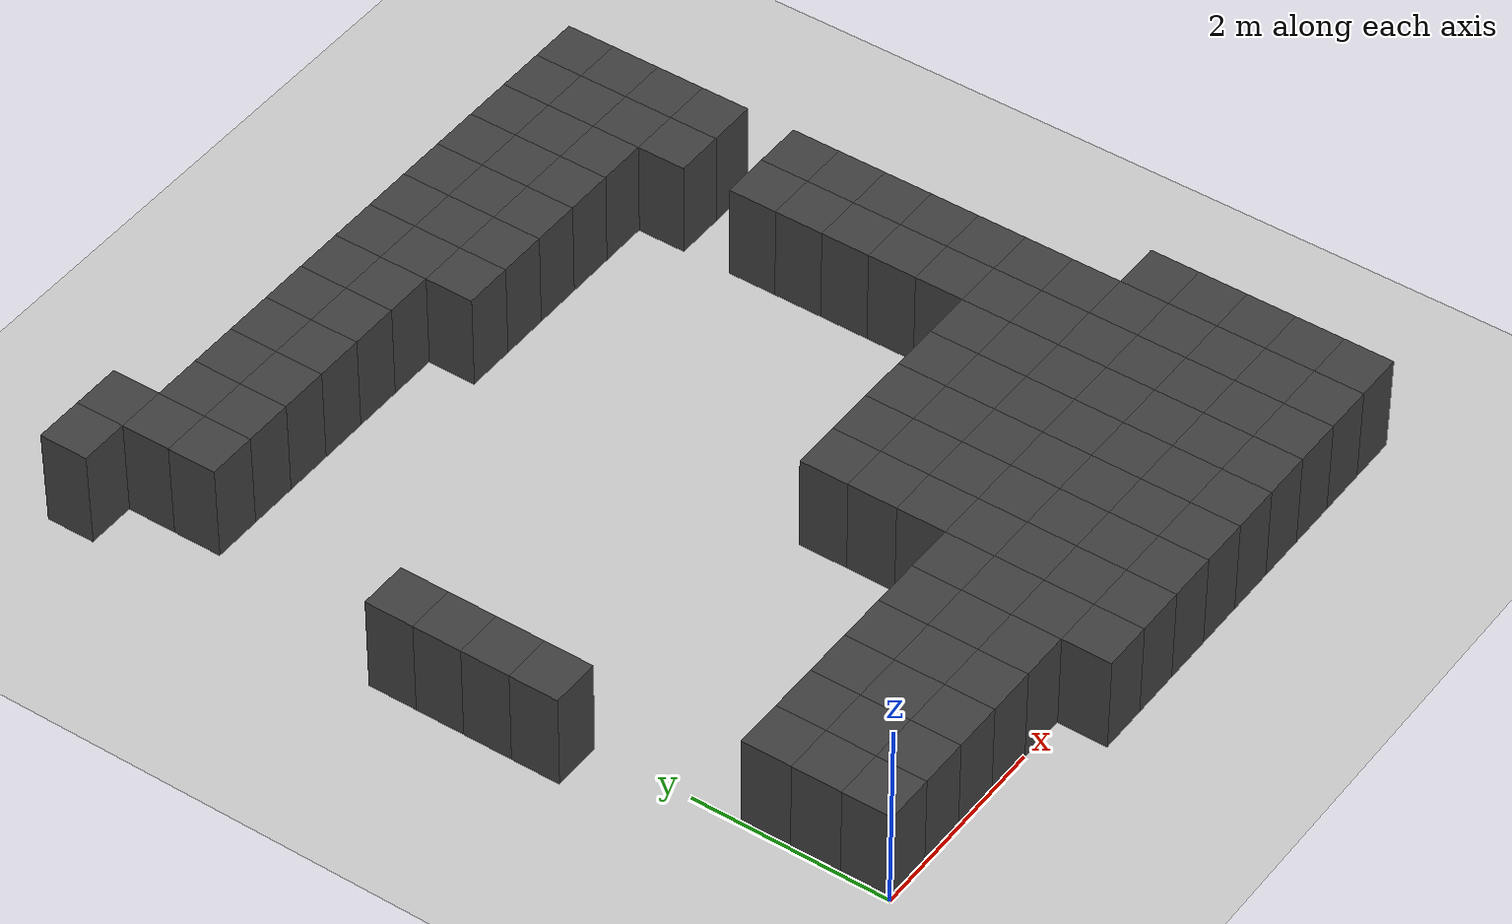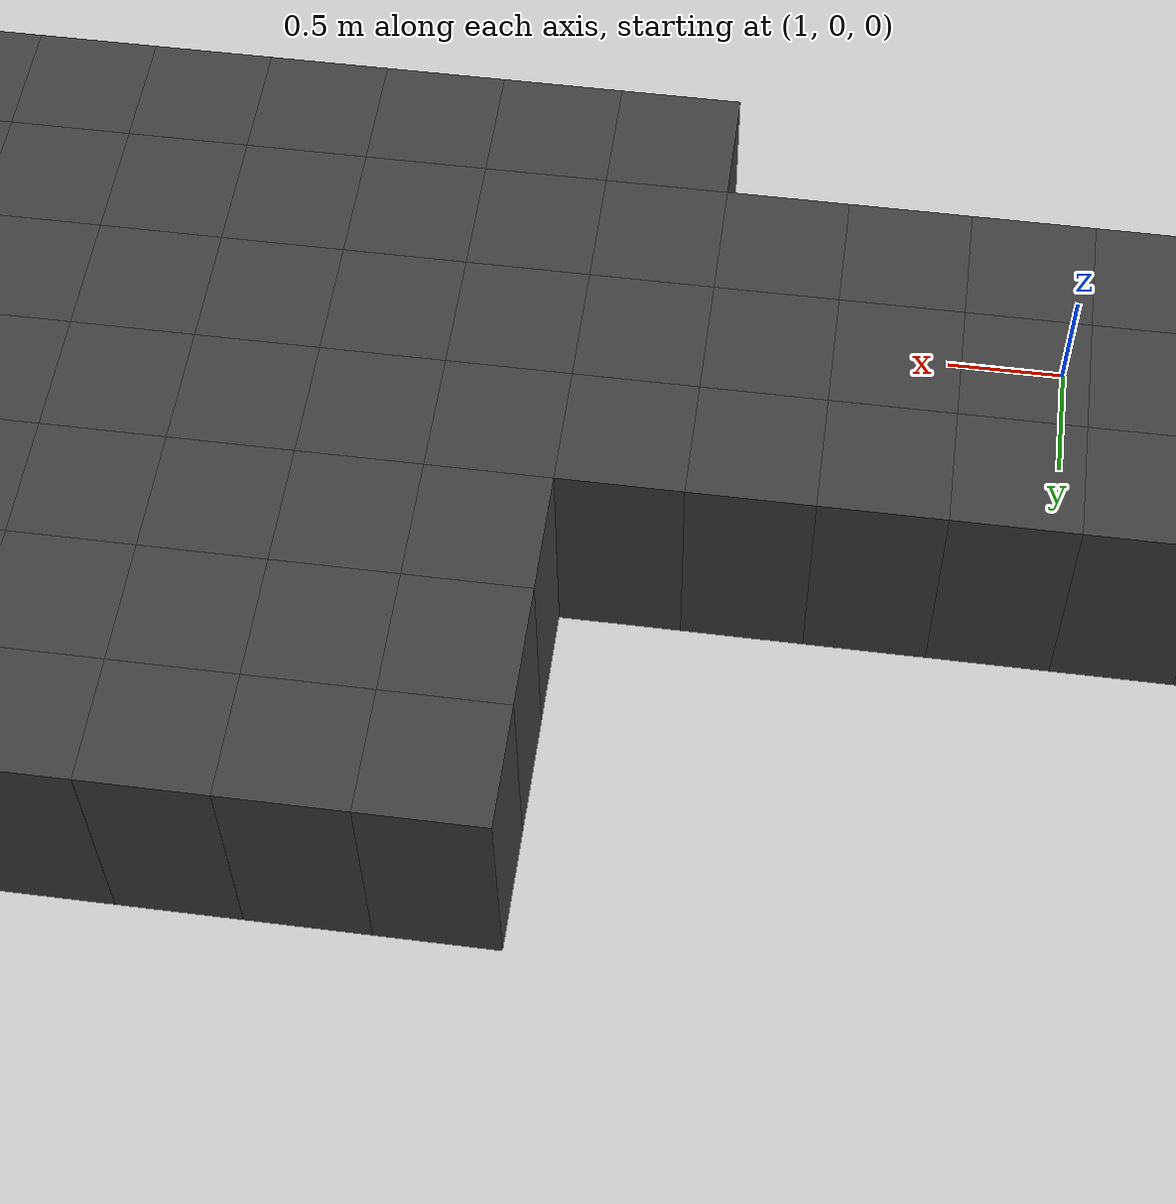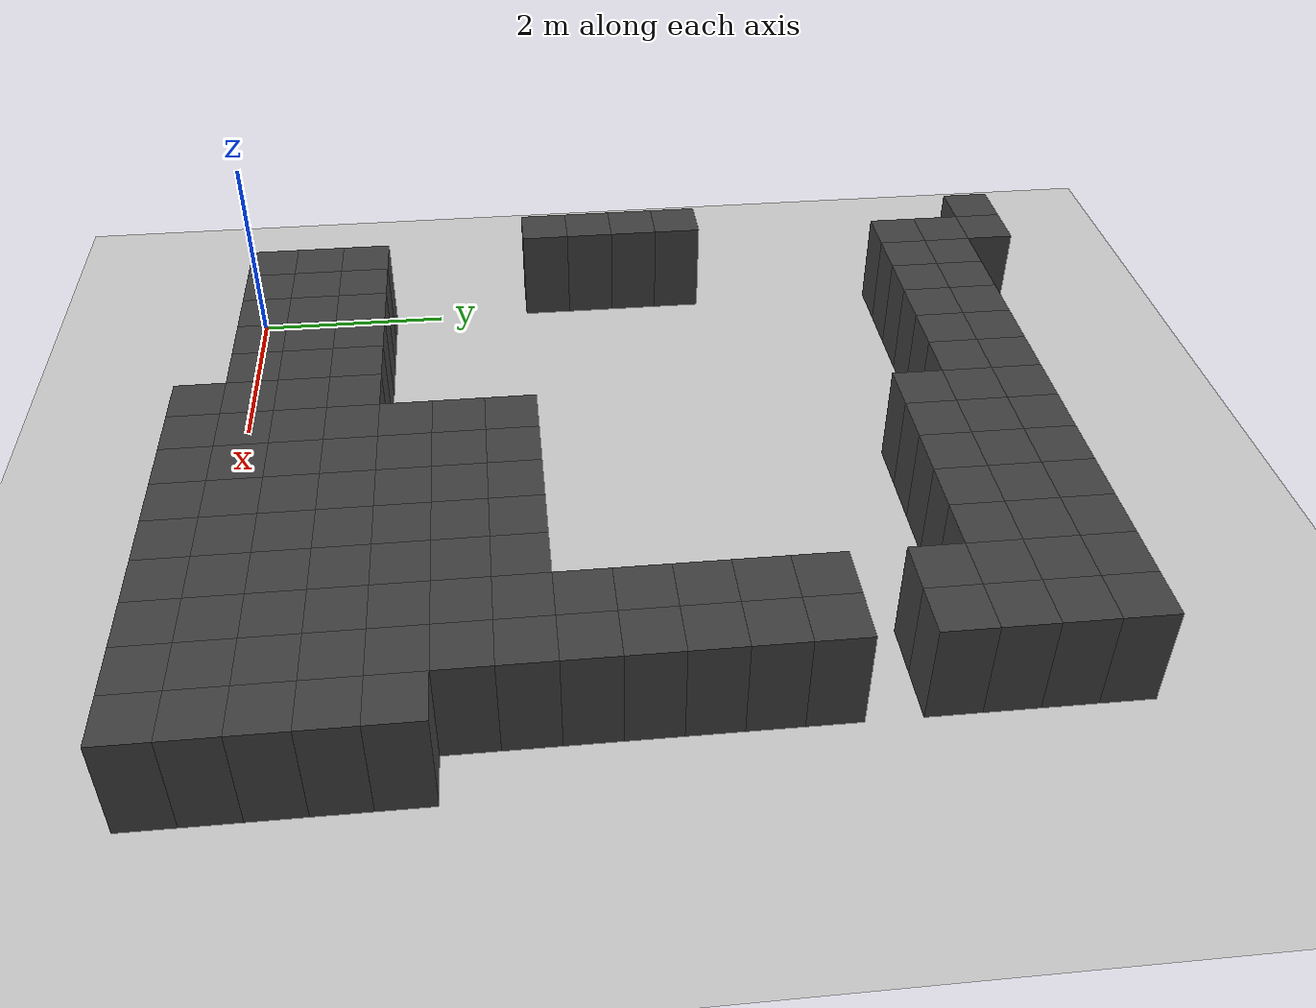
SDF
<sdf version="1.7">
 <world name="map_14074">
  <model name="ground_plane">
   <static>true</static>
   <link name="link">
    <collision name="collision">
     <geometry><plane><normal>0 0 1</normal><size>200 200</size></plane></geometry>
    </collision>
    <visual name="visual">
     <geometry><plane><normal>0 0 1</normal><size>200 200</size></plane></geometry>
     <material><ambient>0.8 0.8 0.8 1</ambient><diffuse>0.8 0.8 0.8 1</diffuse></material>
    </visual>
   </link>
  </model>
  <model name="maze_environment">
   <static>true</static>
   <link name="wall_410">
    <pose>-0.250 8.250 0.500 0 0 0</pose>
    <collision name="col"><geometry><box><size>0.5 0.5 1.0</size></box></geometry></collision>
    <visual name="vis">
     <geometry><box><size>0.5 0.5 1.0</size></box></geometry>
     <material><ambient>0.15 0.15 0.15 1</ambient><diffuse>0.25 0.25 0.25 1</diffuse></material>
    </visual>
   </link>
   <link name="wall_411">
    <pose>0.250 8.250 0.500 0 0 0</pose>
    <collision name="col"><geometry><box><size>0.5 0.5 1.0</size></box></geometry></collision>
    <visual name="vis">
     <geometry><box><size>0.5 0.5 1.0</size></box></geometry>
     <material><ambient>0.15 0.15 0.15 1</ambient><diffuse>0.25 0.25 0.25 1</diffuse></material>
    </visual>
   </link>
   <link name="wall_456">
    <pose>0.250 7.750 0.500 0 0 0</pose>
    <collision name="col"><geometry><box><size>0.5 0.5 1.0</size></box></geometry></collision>
    <visual name="vis">
     <geometry><box><size>0.5 0.5 1.0</size></box></geometry>
     <material><ambient>0.15 0.15 0.15 1</ambient><diffuse>0.25 0.25 0.25 1</diffuse></material>
    </visual>
   </link>
   <link name="wall_457">
    <pose>0.750 7.750 0.500 0 0 0</pose>
    <collision name="col"><geometry><box><size>0.5 0.5 1.0</size></box></geometry></collision>
    <visual name="vis">
     <geometry><box><size>0.5 0.5 1.0</size></box></geometry>
     <material><ambient>0.15 0.15 0.15 1</ambient><diffuse>0.25 0.25 0.25 1</diffuse></material>
    </visual>
   </link>
   <link name="wall_458">
    <pose>1.250 7.750 0.500 0 0 0</pose>
    <collision name="col"><geometry><box><size>0.5 0.5 1.0</size></box></geometry></collision>
    <visual name="vis">
     <geometry><box><size>0.5 0.5 1.0</size></box></geometry>
     <material><ambient>0.15 0.15 0.15 1</ambient><diffuse>0.25 0.25 0.25 1</diffuse></material>
    </visual>
   </link>
   <link name="wall_459">
    <pose>1.750 7.750 0.500 0 0 0</pose>
    <collision name="col"><geometry><box><size>0.5 0.5 1.0</size></box></geometry></collision>
    <visual name="vis">
     <geometry><box><size>0.5 0.5 1.0</size></box></geometry>
     <material><ambient>0.15 0.15 0.15 1</ambient><diffuse>0.25 0.25 0.25 1</diffuse></material>
    </visual>
   </link>
   <link name="wall_460">
    <pose>2.250 7.750 0.500 0 0 0</pose>
    <collision name="col"><geometry><box><size>0.5 0.5 1.0</size></box></geometry></collision>
    <visual name="vis">
     <geometry><box><size>0.5 0.5 1.0</size></box></geometry>
     <material><ambient>0.15 0.15 0.15 1</ambient><diffuse>0.25 0.25 0.25 1</diffuse></material>
    </visual>
   </link>
   <link name="wall_461">
    <pose>2.750 7.750 0.500 0 0 0</pose>
    <collision name="col"><geometry><box><size>0.5 0.5 1.0</size></box></geometry></collision>
    <visual name="vis">
     <geometry><box><size>0.5 0.5 1.0</size></box></geometry>
     <material><ambient>0.15 0.15 0.15 1</ambient><diffuse>0.25 0.25 0.25 1</diffuse></material>
    </visual>
   </link>
   <link name="wall_462">
    <pose>3.250 7.750 0.500 0 0 0</pose>
    <collision name="col"><geometry><box><size>0.5 0.5 1.0</size></box></geometry></collision>
    <visual name="vis">
     <geometry><box><size>0.5 0.5 1.0</size></box></geometry>
     <material><ambient>0.15 0.15 0.15 1</ambient><diffuse>0.25 0.25 0.25 1</diffuse></material>
    </visual>
   </link>
   <link name="wall_463">
    <pose>3.750 7.750 0.500 0 0 0</pose>
    <collision name="col"><geometry><box><size>0.5 0.5 1.0</size></box></geometry></collision>
    <visual name="vis">
     <geometry><box><size>0.5 0.5 1.0</size></box></geometry>
     <material><ambient>0.15 0.15 0.15 1</ambient><diffuse>0.25 0.25 0.25 1</diffuse></material>
    </visual>
   </link>
   <link name="wall_464">
    <pose>4.250 7.750 0.500 0 0 0</pose>
    <collision name="col"><geometry><box><size>0.5 0.5 1.0</size></box></geometry></collision>
    <visual name="vis">
     <geometry><box><size>0.5 0.5 1.0</size></box></geometry>
     <material><ambient>0.15 0.15 0.15 1</ambient><diffuse>0.25 0.25 0.25 1</diffuse></material>
    </visual>
   </link>
   <link name="wall_465">
    <pose>4.750 7.750 0.500 0 0 0</pose>
    <collision name="col"><geometry><box><size>0.5 0.5 1.0</size></box></geometry></collision>
    <visual name="vis">
     <geometry><box><size>0.5 0.5 1.0</size></box></geometry>
     <material><ambient>0.15 0.15 0.15 1</ambient><diffuse>0.25 0.25 0.25 1</diffuse></material>
    </visual>
   </link>
   <link name="wall_466">
    <pose>5.250 7.750 0.500 0 0 0</pose>
    <collision name="col"><geometry><box><size>0.5 0.5 1.0</size></box></geometry></collision>
    <visual name="vis">
     <geometry><box><size>0.5 0.5 1.0</size></box></geometry>
     <material><ambient>0.15 0.15 0.15 1</ambient><diffuse>0.25 0.25 0.25 1</diffuse></material>
    </visual>
   </link>
   <link name="wall_467">
    <pose>5.750 7.750 0.500 0 0 0</pose>
    <collision name="col"><geometry><box><size>0.5 0.5 1.0</size></box></geometry></collision>
    <visual name="vis">
     <geometry><box><size>0.5 0.5 1.0</size></box></geometry>
     <material><ambient>0.15 0.15 0.15 1</ambient><diffuse>0.25 0.25 0.25 1</diffuse></material>
    </visual>
   </link>
   <link name="wall_468">
    <pose>6.250 7.750 0.500 0 0 0</pose>
    <collision name="col"><geometry><box><size>0.5 0.5 1.0</size></box></geometry></collision>
    <visual name="vis">
     <geometry><box><size>0.5 0.5 1.0</size></box></geometry>
     <material><ambient>0.15 0.15 0.15 1</ambient><diffuse>0.25 0.25 0.25 1</diffuse></material>
    </visual>
   </link>
   <link name="wall_501">
    <pose>0.250 7.250 0.500 0 0 0</pose>
    <collision name="col"><geometry><box><size>0.5 0.5 1.0</size></box></geometry></collision>
    <visual name="vis">
     <geometry><box><size>0.5 0.5 1.0</size></box></geometry>
     <material><ambient>0.15 0.15 0.15 1</ambient><diffuse>0.25 0.25 0.25 1</diffuse></material>
    </visual>
   </link>
   <link name="wall_502">
    <pose>0.750 7.250 0.500 0 0 0</pose>
    <collision name="col"><geometry><box><size>0.5 0.5 1.0</size></box></geometry></collision>
    <visual name="vis">
     <geometry><box><size>0.5 0.5 1.0</size></box></geometry>
     <material><ambient>0.15 0.15 0.15 1</ambient><diffuse>0.25 0.25 0.25 1</diffuse></material>
    </visual>
   </link>
   <link name="wall_503">
    <pose>1.250 7.250 0.500 0 0 0</pose>
    <collision name="col"><geometry><box><size>0.5 0.5 1.0</size></box></geometry></collision>
    <visual name="vis">
     <geometry><box><size>0.5 0.5 1.0</size></box></geometry>
     <material><ambient>0.15 0.15 0.15 1</ambient><diffuse>0.25 0.25 0.25 1</diffuse></material>
    </visual>
   </link>
   <link name="wall_504">
    <pose>1.750 7.250 0.500 0 0 0</pose>
    <collision name="col"><geometry><box><size>0.5 0.5 1.0</size></box></geometry></collision>
    <visual name="vis">
     <geometry><box><size>0.5 0.5 1.0</size></box></geometry>
     <material><ambient>0.15 0.15 0.15 1</ambient><diffuse>0.25 0.25 0.25 1</diffuse></material>
    </visual>
   </link>
   <link name="wall_505">
    <pose>2.250 7.250 0.500 0 0 0</pose>
    <collision name="col"><geometry><box><size>0.5 0.5 1.0</size></box></geometry></collision>
    <visual name="vis">
     <geometry><box><size>0.5 0.5 1.0</size></box></geometry>
     <material><ambient>0.15 0.15 0.15 1</ambient><diffuse>0.25 0.25 0.25 1</diffuse></material>
    </visual>
   </link>
   <link name="wall_506">
    <pose>2.750 7.250 0.500 0 0 0</pose>
    <collision name="col"><geometry><box><size>0.5 0.5 1.0</size></box></geometry></collision>
    <visual name="vis">
     <geometry><box><size>0.5 0.5 1.0</size></box></geometry>
     <material><ambient>0.15 0.15 0.15 1</ambient><diffuse>0.25 0.25 0.25 1</diffuse></material>
    </visual>
   </link>
   <link name="wall_507">
    <pose>3.250 7.250 0.500 0 0 0</pose>
    <collision name="col"><geometry><box><size>0.5 0.5 1.0</size></box></geometry></collision>
    <visual name="vis">
     <geometry><box><size>0.5 0.5 1.0</size></box></geometry>
     <material><ambient>0.15 0.15 0.15 1</ambient><diffuse>0.25 0.25 0.25 1</diffuse></material>
    </visual>
   </link>
   <link name="wall_508">
    <pose>3.750 7.250 0.500 0 0 0</pose>
    <collision name="col"><geometry><box><size>0.5 0.5 1.0</size></box></geometry></collision>
    <visual name="vis">
     <geometry><box><size>0.5 0.5 1.0</size></box></geometry>
     <material><ambient>0.15 0.15 0.15 1</ambient><diffuse>0.25 0.25 0.25 1</diffuse></material>
    </visual>
   </link>
   <link name="wall_509">
    <pose>4.250 7.250 0.500 0 0 0</pose>
    <collision name="col"><geometry><box><size>0.5 0.5 1.0</size></box></geometry></collision>
    <visual name="vis">
     <geometry><box><size>0.5 0.5 1.0</size></box></geometry>
     <material><ambient>0.15 0.15 0.15 1</ambient><diffuse>0.25 0.25 0.25 1</diffuse></material>
    </visual>
   </link>
   <link name="wall_510">
    <pose>4.750 7.250 0.500 0 0 0</pose>
    <collision name="col"><geometry><box><size>0.5 0.5 1.0</size></box></geometry></collision>
    <visual name="vis">
     <geometry><box><size>0.5 0.5 1.0</size></box></geometry>
     <material><ambient>0.15 0.15 0.15 1</ambient><diffuse>0.25 0.25 0.25 1</diffuse></material>
    </visual>
   </link>
   <link name="wall_511">
    <pose>5.250 7.250 0.500 0 0 0</pose>
    <collision name="col"><geometry><box><size>0.5 0.5 1.0</size></box></geometry></collision>
    <visual name="vis">
     <geometry><box><size>0.5 0.5 1.0</size></box></geometry>
     <material><ambient>0.15 0.15 0.15 1</ambient><diffuse>0.25 0.25 0.25 1</diffuse></material>
    </visual>
   </link>
   <link name="wall_512">
    <pose>5.750 7.250 0.500 0 0 0</pose>
    <collision name="col"><geometry><box><size>0.5 0.5 1.0</size></box></geometry></collision>
    <visual name="vis">
     <geometry><box><size>0.5 0.5 1.0</size></box></geometry>
     <material><ambient>0.15 0.15 0.15 1</ambient><diffuse>0.25 0.25 0.25 1</diffuse></material>
    </visual>
   </link>
   <link name="wall_513">
    <pose>6.250 7.250 0.500 0 0 0</pose>
    <collision name="col"><geometry><box><size>0.5 0.5 1.0</size></box></geometry></collision>
    <visual name="vis">
     <geometry><box><size>0.5 0.5 1.0</size></box></geometry>
     <material><ambient>0.15 0.15 0.15 1</ambient><diffuse>0.25 0.25 0.25 1</diffuse></material>
    </visual>
   </link>
   <link name="wall_542">
    <pose>3.250 6.750 0.500 0 0 0</pose>
    <collision name="col"><geometry><box><size>0.5 0.5 1.0</size></box></geometry></collision>
    <visual name="vis">
     <geometry><box><size>0.5 0.5 1.0</size></box></geometry>
     <material><ambient>0.15 0.15 0.15 1</ambient><diffuse>0.25 0.25 0.25 1</diffuse></material>
    </visual>
   </link>
   <link name="wall_543">
    <pose>3.750 6.750 0.500 0 0 0</pose>
    <collision name="col"><geometry><box><size>0.5 0.5 1.0</size></box></geometry></collision>
    <visual name="vis">
     <geometry><box><size>0.5 0.5 1.0</size></box></geometry>
     <material><ambient>0.15 0.15 0.15 1</ambient><diffuse>0.25 0.25 0.25 1</diffuse></material>
    </visual>
   </link>
   <link name="wall_544">
    <pose>4.250 6.750 0.500 0 0 0</pose>
    <collision name="col"><geometry><box><size>0.5 0.5 1.0</size></box></geometry></collision>
    <visual name="vis">
     <geometry><box><size>0.5 0.5 1.0</size></box></geometry>
     <material><ambient>0.15 0.15 0.15 1</ambient><diffuse>0.25 0.25 0.25 1</diffuse></material>
    </visual>
   </link>
   <link name="wall_545">
    <pose>4.750 6.750 0.500 0 0 0</pose>
    <collision name="col"><geometry><box><size>0.5 0.5 1.0</size></box></geometry></collision>
    <visual name="vis">
     <geometry><box><size>0.5 0.5 1.0</size></box></geometry>
     <material><ambient>0.15 0.15 0.15 1</ambient><diffuse>0.25 0.25 0.25 1</diffuse></material>
    </visual>
   </link>
   <link name="wall_546">
    <pose>5.250 6.750 0.500 0 0 0</pose>
    <collision name="col"><geometry><box><size>0.5 0.5 1.0</size></box></geometry></collision>
    <visual name="vis">
     <geometry><box><size>0.5 0.5 1.0</size></box></geometry>
     <material><ambient>0.15 0.15 0.15 1</ambient><diffuse>0.25 0.25 0.25 1</diffuse></material>
    </visual>
   </link>
   <link name="wall_547">
    <pose>5.750 6.750 0.500 0 0 0</pose>
    <collision name="col"><geometry><box><size>0.5 0.5 1.0</size></box></geometry></collision>
    <visual name="vis">
     <geometry><box><size>0.5 0.5 1.0</size></box></geometry>
     <material><ambient>0.15 0.15 0.15 1</ambient><diffuse>0.25 0.25 0.25 1</diffuse></material>
    </visual>
   </link>
   <link name="wall_548">
    <pose>6.250 6.750 0.500 0 0 0</pose>
    <collision name="col"><geometry><box><size>0.5 0.5 1.0</size></box></geometry></collision>
    <visual name="vis">
     <geometry><box><size>0.5 0.5 1.0</size></box></geometry>
     <material><ambient>0.15 0.15 0.15 1</ambient><diffuse>0.25 0.25 0.25 1</diffuse></material>
    </visual>
   </link>
   <link name="wall_577">
    <pose>5.750 6.250 0.500 0 0 0</pose>
    <collision name="col"><geometry><box><size>0.5 0.5 1.0</size></box></geometry></collision>
    <visual name="vis">
     <geometry><box><size>0.5 0.5 1.0</size></box></geometry>
     <material><ambient>0.15 0.15 0.15 1</ambient><diffuse>0.25 0.25 0.25 1</diffuse></material>
    </visual>
   </link>
   <link name="wall_578">
    <pose>6.250 6.250 0.500 0 0 0</pose>
    <collision name="col"><geometry><box><size>0.5 0.5 1.0</size></box></geometry></collision>
    <visual name="vis">
     <geometry><box><size>0.5 0.5 1.0</size></box></geometry>
     <material><ambient>0.15 0.15 0.15 1</ambient><diffuse>0.25 0.25 0.25 1</diffuse></material>
    </visual>
   </link>
   <link name="wall_628">
    <pose>5.750 5.250 0.500 0 0 0</pose>
    <collision name="col"><geometry><box><size>0.5 0.5 1.0</size></box></geometry></collision>
    <visual name="vis">
     <geometry><box><size>0.5 0.5 1.0</size></box></geometry>
     <material><ambient>0.15 0.15 0.15 1</ambient><diffuse>0.25 0.25 0.25 1</diffuse></material>
    </visual>
   </link>
   <link name="wall_629">
    <pose>6.250 5.250 0.500 0 0 0</pose>
    <collision name="col"><geometry><box><size>0.5 0.5 1.0</size></box></geometry></collision>
    <visual name="vis">
     <geometry><box><size>0.5 0.5 1.0</size></box></geometry>
     <material><ambient>0.15 0.15 0.15 1</ambient><diffuse>0.25 0.25 0.25 1</diffuse></material>
    </visual>
   </link>
   <link name="wall_661">
    <pose>-0.250 4.750 0.500 0 0 0</pose>
    <collision name="col"><geometry><box><size>0.5 0.5 1.0</size></box></geometry></collision>
    <visual name="vis">
     <geometry><box><size>0.5 0.5 1.0</size></box></geometry>
     <material><ambient>0.15 0.15 0.15 1</ambient><diffuse>0.25 0.25 0.25 1</diffuse></material>
    </visual>
   </link>
   <link name="wall_662">
    <pose>5.750 4.750 0.500 0 0 0</pose>
    <collision name="col"><geometry><box><size>0.5 0.5 1.0</size></box></geometry></collision>
    <visual name="vis">
     <geometry><box><size>0.5 0.5 1.0</size></box></geometry>
     <material><ambient>0.15 0.15 0.15 1</ambient><diffuse>0.25 0.25 0.25 1</diffuse></material>
    </visual>
   </link>
   <link name="wall_663">
    <pose>6.250 4.750 0.500 0 0 0</pose>
    <collision name="col"><geometry><box><size>0.5 0.5 1.0</size></box></geometry></collision>
    <visual name="vis">
     <geometry><box><size>0.5 0.5 1.0</size></box></geometry>
     <material><ambient>0.15 0.15 0.15 1</ambient><diffuse>0.25 0.25 0.25 1</diffuse></material>
    </visual>
   </link>
   <link name="wall_686">
    <pose>-0.250 4.250 0.500 0 0 0</pose>
    <collision name="col"><geometry><box><size>0.5 0.5 1.0</size></box></geometry></collision>
    <visual name="vis">
     <geometry><box><size>0.5 0.5 1.0</size></box></geometry>
     <material><ambient>0.15 0.15 0.15 1</ambient><diffuse>0.25 0.25 0.25 1</diffuse></material>
    </visual>
   </link>
   <link name="wall_687">
    <pose>5.750 4.250 0.500 0 0 0</pose>
    <collision name="col"><geometry><box><size>0.5 0.5 1.0</size></box></geometry></collision>
    <visual name="vis">
     <geometry><box><size>0.5 0.5 1.0</size></box></geometry>
     <material><ambient>0.15 0.15 0.15 1</ambient><diffuse>0.25 0.25 0.25 1</diffuse></material>
    </visual>
   </link>
   <link name="wall_688">
    <pose>6.250 4.250 0.500 0 0 0</pose>
    <collision name="col"><geometry><box><size>0.5 0.5 1.0</size></box></geometry></collision>
    <visual name="vis">
     <geometry><box><size>0.5 0.5 1.0</size></box></geometry>
     <material><ambient>0.15 0.15 0.15 1</ambient><diffuse>0.25 0.25 0.25 1</diffuse></material>
    </visual>
   </link>
   <link name="wall_711">
    <pose>-0.250 3.750 0.500 0 0 0</pose>
    <collision name="col"><geometry><box><size>0.5 0.5 1.0</size></box></geometry></collision>
    <visual name="vis">
     <geometry><box><size>0.5 0.5 1.0</size></box></geometry>
     <material><ambient>0.15 0.15 0.15 1</ambient><diffuse>0.25 0.25 0.25 1</diffuse></material>
    </visual>
   </link>
   <link name="wall_712">
    <pose>5.750 3.750 0.500 0 0 0</pose>
    <collision name="col"><geometry><box><size>0.5 0.5 1.0</size></box></geometry></collision>
    <visual name="vis">
     <geometry><box><size>0.5 0.5 1.0</size></box></geometry>
     <material><ambient>0.15 0.15 0.15 1</ambient><diffuse>0.25 0.25 0.25 1</diffuse></material>
    </visual>
   </link>
   <link name="wall_713">
    <pose>6.250 3.750 0.500 0 0 0</pose>
    <collision name="col"><geometry><box><size>0.5 0.5 1.0</size></box></geometry></collision>
    <visual name="vis">
     <geometry><box><size>0.5 0.5 1.0</size></box></geometry>
     <material><ambient>0.15 0.15 0.15 1</ambient><diffuse>0.25 0.25 0.25 1</diffuse></material>
    </visual>
   </link>
   <link name="wall_739">
    <pose>-0.250 3.250 0.500 0 0 0</pose>
    <collision name="col"><geometry><box><size>0.5 0.5 1.0</size></box></geometry></collision>
    <visual name="vis">
     <geometry><box><size>0.5 0.5 1.0</size></box></geometry>
     <material><ambient>0.15 0.15 0.15 1</ambient><diffuse>0.25 0.25 0.25 1</diffuse></material>
    </visual>
   </link>
   <link name="wall_740">
    <pose>5.750 3.250 0.500 0 0 0</pose>
    <collision name="col"><geometry><box><size>0.5 0.5 1.0</size></box></geometry></collision>
    <visual name="vis">
     <geometry><box><size>0.5 0.5 1.0</size></box></geometry>
     <material><ambient>0.15 0.15 0.15 1</ambient><diffuse>0.25 0.25 0.25 1</diffuse></material>
    </visual>
   </link>
   <link name="wall_741">
    <pose>6.250 3.250 0.500 0 0 0</pose>
    <collision name="col"><geometry><box><size>0.5 0.5 1.0</size></box></geometry></collision>
    <visual name="vis">
     <geometry><box><size>0.5 0.5 1.0</size></box></geometry>
     <material><ambient>0.15 0.15 0.15 1</ambient><diffuse>0.25 0.25 0.25 1</diffuse></material>
    </visual>
   </link>
   <link name="wall_768">
    <pose>3.250 2.750 0.500 0 0 0</pose>
    <collision name="col"><geometry><box><size>0.5 0.5 1.0</size></box></geometry></collision>
    <visual name="vis">
     <geometry><box><size>0.5 0.5 1.0</size></box></geometry>
     <material><ambient>0.15 0.15 0.15 1</ambient><diffuse>0.25 0.25 0.25 1</diffuse></material>
    </visual>
   </link>
   <link name="wall_769">
    <pose>3.750 2.750 0.500 0 0 0</pose>
    <collision name="col"><geometry><box><size>0.5 0.5 1.0</size></box></geometry></collision>
    <visual name="vis">
     <geometry><box><size>0.5 0.5 1.0</size></box></geometry>
     <material><ambient>0.15 0.15 0.15 1</ambient><diffuse>0.25 0.25 0.25 1</diffuse></material>
    </visual>
   </link>
   <link name="wall_770">
    <pose>4.250 2.750 0.500 0 0 0</pose>
    <collision name="col"><geometry><box><size>0.5 0.5 1.0</size></box></geometry></collision>
    <visual name="vis">
     <geometry><box><size>0.5 0.5 1.0</size></box></geometry>
     <material><ambient>0.15 0.15 0.15 1</ambient><diffuse>0.25 0.25 0.25 1</diffuse></material>
    </visual>
   </link>
   <link name="wall_771">
    <pose>4.750 2.750 0.500 0 0 0</pose>
    <collision name="col"><geometry><box><size>0.5 0.5 1.0</size></box></geometry></collision>
    <visual name="vis">
     <geometry><box><size>0.5 0.5 1.0</size></box></geometry>
     <material><ambient>0.15 0.15 0.15 1</ambient><diffuse>0.25 0.25 0.25 1</diffuse></material>
    </visual>
   </link>
   <link name="wall_772">
    <pose>5.250 2.750 0.500 0 0 0</pose>
    <collision name="col"><geometry><box><size>0.5 0.5 1.0</size></box></geometry></collision>
    <visual name="vis">
     <geometry><box><size>0.5 0.5 1.0</size></box></geometry>
     <material><ambient>0.15 0.15 0.15 1</ambient><diffuse>0.25 0.25 0.25 1</diffuse></material>
    </visual>
   </link>
   <link name="wall_773">
    <pose>5.750 2.750 0.500 0 0 0</pose>
    <collision name="col"><geometry><box><size>0.5 0.5 1.0</size></box></geometry></collision>
    <visual name="vis">
     <geometry><box><size>0.5 0.5 1.0</size></box></geometry>
     <material><ambient>0.15 0.15 0.15 1</ambient><diffuse>0.25 0.25 0.25 1</diffuse></material>
    </visual>
   </link>
   <link name="wall_774">
    <pose>6.250 2.750 0.500 0 0 0</pose>
    <collision name="col"><geometry><box><size>0.5 0.5 1.0</size></box></geometry></collision>
    <visual name="vis">
     <geometry><box><size>0.5 0.5 1.0</size></box></geometry>
     <material><ambient>0.15 0.15 0.15 1</ambient><diffuse>0.25 0.25 0.25 1</diffuse></material>
    </visual>
   </link>
   <link name="wall_809">
    <pose>3.250 2.250 0.500 0 0 0</pose>
    <collision name="col"><geometry><box><size>0.5 0.5 1.0</size></box></geometry></collision>
    <visual name="vis">
     <geometry><box><size>0.5 0.5 1.0</size></box></geometry>
     <material><ambient>0.15 0.15 0.15 1</ambient><diffuse>0.25 0.25 0.25 1</diffuse></material>
    </visual>
   </link>
   <link name="wall_810">
    <pose>3.750 2.250 0.500 0 0 0</pose>
    <collision name="col"><geometry><box><size>0.5 0.5 1.0</size></box></geometry></collision>
    <visual name="vis">
     <geometry><box><size>0.5 0.5 1.0</size></box></geometry>
     <material><ambient>0.15 0.15 0.15 1</ambient><diffuse>0.25 0.25 0.25 1</diffuse></material>
    </visual>
   </link>
   <link name="wall_811">
    <pose>4.250 2.250 0.500 0 0 0</pose>
    <collision name="col"><geometry><box><size>0.5 0.5 1.0</size></box></geometry></collision>
    <visual name="vis">
     <geometry><box><size>0.5 0.5 1.0</size></box></geometry>
     <material><ambient>0.15 0.15 0.15 1</ambient><diffuse>0.25 0.25 0.25 1</diffuse></material>
    </visual>
   </link>
   <link name="wall_812">
    <pose>4.750 2.250 0.500 0 0 0</pose>
    <collision name="col"><geometry><box><size>0.5 0.5 1.0</size></box></geometry></collision>
    <visual name="vis">
     <geometry><box><size>0.5 0.5 1.0</size></box></geometry>
     <material><ambient>0.15 0.15 0.15 1</ambient><diffuse>0.25 0.25 0.25 1</diffuse></material>
    </visual>
   </link>
   <link name="wall_813">
    <pose>5.250 2.250 0.500 0 0 0</pose>
    <collision name="col"><geometry><box><size>0.5 0.5 1.0</size></box></geometry></collision>
    <visual name="vis">
     <geometry><box><size>0.5 0.5 1.0</size></box></geometry>
     <material><ambient>0.15 0.15 0.15 1</ambient><diffuse>0.25 0.25 0.25 1</diffuse></material>
    </visual>
   </link>
   <link name="wall_814">
    <pose>5.750 2.250 0.500 0 0 0</pose>
    <collision name="col"><geometry><box><size>0.5 0.5 1.0</size></box></geometry></collision>
    <visual name="vis">
     <geometry><box><size>0.5 0.5 1.0</size></box></geometry>
     <material><ambient>0.15 0.15 0.15 1</ambient><diffuse>0.25 0.25 0.25 1</diffuse></material>
    </visual>
   </link>
   <link name="wall_815">
    <pose>6.250 2.250 0.500 0 0 0</pose>
    <collision name="col"><geometry><box><size>0.5 0.5 1.0</size></box></geometry></collision>
    <visual name="vis">
     <geometry><box><size>0.5 0.5 1.0</size></box></geometry>
     <material><ambient>0.15 0.15 0.15 1</ambient><diffuse>0.25 0.25 0.25 1</diffuse></material>
    </visual>
   </link>
   <link name="wall_850">
    <pose>3.250 1.750 0.500 0 0 0</pose>
    <collision name="col"><geometry><box><size>0.5 0.5 1.0</size></box></geometry></collision>
    <visual name="vis">
     <geometry><box><size>0.5 0.5 1.0</size></box></geometry>
     <material><ambient>0.15 0.15 0.15 1</ambient><diffuse>0.25 0.25 0.25 1</diffuse></material>
    </visual>
   </link>
   <link name="wall_851">
    <pose>3.750 1.750 0.500 0 0 0</pose>
    <collision name="col"><geometry><box><size>0.5 0.5 1.0</size></box></geometry></collision>
    <visual name="vis">
     <geometry><box><size>0.5 0.5 1.0</size></box></geometry>
     <material><ambient>0.15 0.15 0.15 1</ambient><diffuse>0.25 0.25 0.25 1</diffuse></material>
    </visual>
   </link>
   <link name="wall_852">
    <pose>4.250 1.750 0.500 0 0 0</pose>
    <collision name="col"><geometry><box><size>0.5 0.5 1.0</size></box></geometry></collision>
    <visual name="vis">
     <geometry><box><size>0.5 0.5 1.0</size></box></geometry>
     <material><ambient>0.15 0.15 0.15 1</ambient><diffuse>0.25 0.25 0.25 1</diffuse></material>
    </visual>
   </link>
   <link name="wall_853">
    <pose>4.750 1.750 0.500 0 0 0</pose>
    <collision name="col"><geometry><box><size>0.5 0.5 1.0</size></box></geometry></collision>
    <visual name="vis">
     <geometry><box><size>0.5 0.5 1.0</size></box></geometry>
     <material><ambient>0.15 0.15 0.15 1</ambient><diffuse>0.25 0.25 0.25 1</diffuse></material>
    </visual>
   </link>
   <link name="wall_854">
    <pose>5.250 1.750 0.500 0 0 0</pose>
    <collision name="col"><geometry><box><size>0.5 0.5 1.0</size></box></geometry></collision>
    <visual name="vis">
     <geometry><box><size>0.5 0.5 1.0</size></box></geometry>
     <material><ambient>0.15 0.15 0.15 1</ambient><diffuse>0.25 0.25 0.25 1</diffuse></material>
    </visual>
   </link>
   <link name="wall_855">
    <pose>5.750 1.750 0.500 0 0 0</pose>
    <collision name="col"><geometry><box><size>0.5 0.5 1.0</size></box></geometry></collision>
    <visual name="vis">
     <geometry><box><size>0.5 0.5 1.0</size></box></geometry>
     <material><ambient>0.15 0.15 0.15 1</ambient><diffuse>0.25 0.25 0.25 1</diffuse></material>
    </visual>
   </link>
   <link name="wall_856">
    <pose>6.250 1.750 0.500 0 0 0</pose>
    <collision name="col"><geometry><box><size>0.5 0.5 1.0</size></box></geometry></collision>
    <visual name="vis">
     <geometry><box><size>0.5 0.5 1.0</size></box></geometry>
     <material><ambient>0.15 0.15 0.15 1</ambient><diffuse>0.25 0.25 0.25 1</diffuse></material>
    </visual>
   </link>
   <link name="wall_857">
    <pose>6.750 1.750 0.500 0 0 0</pose>
    <collision name="col"><geometry><box><size>0.5 0.5 1.0</size></box></geometry></collision>
    <visual name="vis">
     <geometry><box><size>0.5 0.5 1.0</size></box></geometry>
     <material><ambient>0.15 0.15 0.15 1</ambient><diffuse>0.25 0.25 0.25 1</diffuse></material>
    </visual>
   </link>
   <link name="wall_891">
    <pose>0.250 1.250 0.500 0 0 0</pose>
    <collision name="col"><geometry><box><size>0.5 0.5 1.0</size></box></geometry></collision>
    <visual name="vis">
     <geometry><box><size>0.5 0.5 1.0</size></box></geometry>
     <material><ambient>0.15 0.15 0.15 1</ambient><diffuse>0.25 0.25 0.25 1</diffuse></material>
    </visual>
   </link>
   <link name="wall_892">
    <pose>0.750 1.250 0.500 0 0 0</pose>
    <collision name="col"><geometry><box><size>0.5 0.5 1.0</size></box></geometry></collision>
    <visual name="vis">
     <geometry><box><size>0.5 0.5 1.0</size></box></geometry>
     <material><ambient>0.15 0.15 0.15 1</ambient><diffuse>0.25 0.25 0.25 1</diffuse></material>
    </visual>
   </link>
   <link name="wall_893">
    <pose>1.250 1.250 0.500 0 0 0</pose>
    <collision name="col"><geometry><box><size>0.5 0.5 1.0</size></box></geometry></collision>
    <visual name="vis">
     <geometry><box><size>0.5 0.5 1.0</size></box></geometry>
     <material><ambient>0.15 0.15 0.15 1</ambient><diffuse>0.25 0.25 0.25 1</diffuse></material>
    </visual>
   </link>
   <link name="wall_894">
    <pose>1.750 1.250 0.500 0 0 0</pose>
    <collision name="col"><geometry><box><size>0.5 0.5 1.0</size></box></geometry></collision>
    <visual name="vis">
     <geometry><box><size>0.5 0.5 1.0</size></box></geometry>
     <material><ambient>0.15 0.15 0.15 1</ambient><diffuse>0.25 0.25 0.25 1</diffuse></material>
    </visual>
   </link>
   <link name="wall_895">
    <pose>2.250 1.250 0.500 0 0 0</pose>
    <collision name="col"><geometry><box><size>0.5 0.5 1.0</size></box></geometry></collision>
    <visual name="vis">
     <geometry><box><size>0.5 0.5 1.0</size></box></geometry>
     <material><ambient>0.15 0.15 0.15 1</ambient><diffuse>0.25 0.25 0.25 1</diffuse></material>
    </visual>
   </link>
   <link name="wall_896">
    <pose>2.750 1.250 0.500 0 0 0</pose>
    <collision name="col"><geometry><box><size>0.5 0.5 1.0</size></box></geometry></collision>
    <visual name="vis">
     <geometry><box><size>0.5 0.5 1.0</size></box></geometry>
     <material><ambient>0.15 0.15 0.15 1</ambient><diffuse>0.25 0.25 0.25 1</diffuse></material>
    </visual>
   </link>
   <link name="wall_897">
    <pose>3.250 1.250 0.500 0 0 0</pose>
    <collision name="col"><geometry><box><size>0.5 0.5 1.0</size></box></geometry></collision>
    <visual name="vis">
     <geometry><box><size>0.5 0.5 1.0</size></box></geometry>
     <material><ambient>0.15 0.15 0.15 1</ambient><diffuse>0.25 0.25 0.25 1</diffuse></material>
    </visual>
   </link>
   <link name="wall_898">
    <pose>3.750 1.250 0.500 0 0 0</pose>
    <collision name="col"><geometry><box><size>0.5 0.5 1.0</size></box></geometry></collision>
    <visual name="vis">
     <geometry><box><size>0.5 0.5 1.0</size></box></geometry>
     <material><ambient>0.15 0.15 0.15 1</ambient><diffuse>0.25 0.25 0.25 1</diffuse></material>
    </visual>
   </link>
   <link name="wall_899">
    <pose>4.250 1.250 0.500 0 0 0</pose>
    <collision name="col"><geometry><box><size>0.5 0.5 1.0</size></box></geometry></collision>
    <visual name="vis">
     <geometry><box><size>0.5 0.5 1.0</size></box></geometry>
     <material><ambient>0.15 0.15 0.15 1</ambient><diffuse>0.25 0.25 0.25 1</diffuse></material>
    </visual>
   </link>
   <link name="wall_900">
    <pose>4.750 1.250 0.500 0 0 0</pose>
    <collision name="col"><geometry><box><size>0.5 0.5 1.0</size></box></geometry></collision>
    <visual name="vis">
     <geometry><box><size>0.5 0.5 1.0</size></box></geometry>
     <material><ambient>0.15 0.15 0.15 1</ambient><diffuse>0.25 0.25 0.25 1</diffuse></material>
    </visual>
   </link>
   <link name="wall_901">
    <pose>5.250 1.250 0.500 0 0 0</pose>
    <collision name="col"><geometry><box><size>0.5 0.5 1.0</size></box></geometry></collision>
    <visual name="vis">
     <geometry><box><size>0.5 0.5 1.0</size></box></geometry>
     <material><ambient>0.15 0.15 0.15 1</ambient><diffuse>0.25 0.25 0.25 1</diffuse></material>
    </visual>
   </link>
   <link name="wall_902">
    <pose>5.750 1.250 0.500 0 0 0</pose>
    <collision name="col"><geometry><box><size>0.5 0.5 1.0</size></box></geometry></collision>
    <visual name="vis">
     <geometry><box><size>0.5 0.5 1.0</size></box></geometry>
     <material><ambient>0.15 0.15 0.15 1</ambient><diffuse>0.25 0.25 0.25 1</diffuse></material>
    </visual>
   </link>
   <link name="wall_903">
    <pose>6.250 1.250 0.500 0 0 0</pose>
    <collision name="col"><geometry><box><size>0.5 0.5 1.0</size></box></geometry></collision>
    <visual name="vis">
     <geometry><box><size>0.5 0.5 1.0</size></box></geometry>
     <material><ambient>0.15 0.15 0.15 1</ambient><diffuse>0.25 0.25 0.25 1</diffuse></material>
    </visual>
   </link>
   <link name="wall_904">
    <pose>6.750 1.250 0.500 0 0 0</pose>
    <collision name="col"><geometry><box><size>0.5 0.5 1.0</size></box></geometry></collision>
    <visual name="vis">
     <geometry><box><size>0.5 0.5 1.0</size></box></geometry>
     <material><ambient>0.15 0.15 0.15 1</ambient><diffuse>0.25 0.25 0.25 1</diffuse></material>
    </visual>
   </link>
   <link name="wall_929">
    <pose>0.250 0.750 0.500 0 0 0</pose>
    <collision name="col"><geometry><box><size>0.5 0.5 1.0</size></box></geometry></collision>
    <visual name="vis">
     <geometry><box><size>0.5 0.5 1.0</size></box></geometry>
     <material><ambient>0.15 0.15 0.15 1</ambient><diffuse>0.25 0.25 0.25 1</diffuse></material>
    </visual>
   </link>
   <link name="wall_930">
    <pose>0.750 0.750 0.500 0 0 0</pose>
    <collision name="col"><geometry><box><size>0.5 0.5 1.0</size></box></geometry></collision>
    <visual name="vis">
     <geometry><box><size>0.5 0.5 1.0</size></box></geometry>
     <material><ambient>0.15 0.15 0.15 1</ambient><diffuse>0.25 0.25 0.25 1</diffuse></material>
    </visual>
   </link>
   <link name="wall_931">
    <pose>1.250 0.750 0.500 0 0 0</pose>
    <collision name="col"><geometry><box><size>0.5 0.5 1.0</size></box></geometry></collision>
    <visual name="vis">
     <geometry><box><size>0.5 0.5 1.0</size></box></geometry>
     <material><ambient>0.15 0.15 0.15 1</ambient><diffuse>0.25 0.25 0.25 1</diffuse></material>
    </visual>
   </link>
   <link name="wall_932">
    <pose>1.750 0.750 0.500 0 0 0</pose>
    <collision name="col"><geometry><box><size>0.5 0.5 1.0</size></box></geometry></collision>
    <visual name="vis">
     <geometry><box><size>0.5 0.5 1.0</size></box></geometry>
     <material><ambient>0.15 0.15 0.15 1</ambient><diffuse>0.25 0.25 0.25 1</diffuse></material>
    </visual>
   </link>
   <link name="wall_933">
    <pose>2.250 0.750 0.500 0 0 0</pose>
    <collision name="col"><geometry><box><size>0.5 0.5 1.0</size></box></geometry></collision>
    <visual name="vis">
     <geometry><box><size>0.5 0.5 1.0</size></box></geometry>
     <material><ambient>0.15 0.15 0.15 1</ambient><diffuse>0.25 0.25 0.25 1</diffuse></material>
    </visual>
   </link>
   <link name="wall_934">
    <pose>2.750 0.750 0.500 0 0 0</pose>
    <collision name="col"><geometry><box><size>0.5 0.5 1.0</size></box></geometry></collision>
    <visual name="vis">
     <geometry><box><size>0.5 0.5 1.0</size></box></geometry>
     <material><ambient>0.15 0.15 0.15 1</ambient><diffuse>0.25 0.25 0.25 1</diffuse></material>
    </visual>
   </link>
   <link name="wall_935">
    <pose>3.250 0.750 0.500 0 0 0</pose>
    <collision name="col"><geometry><box><size>0.5 0.5 1.0</size></box></geometry></collision>
    <visual name="vis">
     <geometry><box><size>0.5 0.5 1.0</size></box></geometry>
     <material><ambient>0.15 0.15 0.15 1</ambient><diffuse>0.25 0.25 0.25 1</diffuse></material>
    </visual>
   </link>
   <link name="wall_936">
    <pose>3.750 0.750 0.500 0 0 0</pose>
    <collision name="col"><geometry><box><size>0.5 0.5 1.0</size></box></geometry></collision>
    <visual name="vis">
     <geometry><box><size>0.5 0.5 1.0</size></box></geometry>
     <material><ambient>0.15 0.15 0.15 1</ambient><diffuse>0.25 0.25 0.25 1</diffuse></material>
    </visual>
   </link>
   <link name="wall_937">
    <pose>4.250 0.750 0.500 0 0 0</pose>
    <collision name="col"><geometry><box><size>0.5 0.5 1.0</size></box></geometry></collision>
    <visual name="vis">
     <geometry><box><size>0.5 0.5 1.0</size></box></geometry>
     <material><ambient>0.15 0.15 0.15 1</ambient><diffuse>0.25 0.25 0.25 1</diffuse></material>
    </visual>
   </link>
   <link name="wall_938">
    <pose>4.750 0.750 0.500 0 0 0</pose>
    <collision name="col"><geometry><box><size>0.5 0.5 1.0</size></box></geometry></collision>
    <visual name="vis">
     <geometry><box><size>0.5 0.5 1.0</size></box></geometry>
     <material><ambient>0.15 0.15 0.15 1</ambient><diffuse>0.25 0.25 0.25 1</diffuse></material>
    </visual>
   </link>
   <link name="wall_939">
    <pose>5.250 0.750 0.500 0 0 0</pose>
    <collision name="col"><geometry><box><size>0.5 0.5 1.0</size></box></geometry></collision>
    <visual name="vis">
     <geometry><box><size>0.5 0.5 1.0</size></box></geometry>
     <material><ambient>0.15 0.15 0.15 1</ambient><diffuse>0.25 0.25 0.25 1</diffuse></material>
    </visual>
   </link>
   <link name="wall_940">
    <pose>5.750 0.750 0.500 0 0 0</pose>
    <collision name="col"><geometry><box><size>0.5 0.5 1.0</size></box></geometry></collision>
    <visual name="vis">
     <geometry><box><size>0.5 0.5 1.0</size></box></geometry>
     <material><ambient>0.15 0.15 0.15 1</ambient><diffuse>0.25 0.25 0.25 1</diffuse></material>
    </visual>
   </link>
   <link name="wall_941">
    <pose>6.250 0.750 0.500 0 0 0</pose>
    <collision name="col"><geometry><box><size>0.5 0.5 1.0</size></box></geometry></collision>
    <visual name="vis">
     <geometry><box><size>0.5 0.5 1.0</size></box></geometry>
     <material><ambient>0.15 0.15 0.15 1</ambient><diffuse>0.25 0.25 0.25 1</diffuse></material>
    </visual>
   </link>
   <link name="wall_942">
    <pose>6.750 0.750 0.500 0 0 0</pose>
    <collision name="col"><geometry><box><size>0.5 0.5 1.0</size></box></geometry></collision>
    <visual name="vis">
     <geometry><box><size>0.5 0.5 1.0</size></box></geometry>
     <material><ambient>0.15 0.15 0.15 1</ambient><diffuse>0.25 0.25 0.25 1</diffuse></material>
    </visual>
   </link>
   <link name="wall_967">
    <pose>0.250 0.250 0.500 0 0 0</pose>
    <collision name="col"><geometry><box><size>0.5 0.5 1.0</size></box></geometry></collision>
    <visual name="vis">
     <geometry><box><size>0.5 0.5 1.0</size></box></geometry>
     <material><ambient>0.15 0.15 0.15 1</ambient><diffuse>0.25 0.25 0.25 1</diffuse></material>
    </visual>
   </link>
   <link name="wall_968">
    <pose>0.750 0.250 0.500 0 0 0</pose>
    <collision name="col"><geometry><box><size>0.5 0.5 1.0</size></box></geometry></collision>
    <visual name="vis">
     <geometry><box><size>0.5 0.5 1.0</size></box></geometry>
     <material><ambient>0.15 0.15 0.15 1</ambient><diffuse>0.25 0.25 0.25 1</diffuse></material>
    </visual>
   </link>
   <link name="wall_969">
    <pose>1.250 0.250 0.500 0 0 0</pose>
    <collision name="col"><geometry><box><size>0.5 0.5 1.0</size></box></geometry></collision>
    <visual name="vis">
     <geometry><box><size>0.5 0.5 1.0</size></box></geometry>
     <material><ambient>0.15 0.15 0.15 1</ambient><diffuse>0.25 0.25 0.25 1</diffuse></material>
    </visual>
   </link>
   <link name="wall_970">
    <pose>1.750 0.250 0.500 0 0 0</pose>
    <collision name="col"><geometry><box><size>0.5 0.5 1.0</size></box></geometry></collision>
    <visual name="vis">
     <geometry><box><size>0.5 0.5 1.0</size></box></geometry>
     <material><ambient>0.15 0.15 0.15 1</ambient><diffuse>0.25 0.25 0.25 1</diffuse></material>
    </visual>
   </link>
   <link name="wall_971">
    <pose>2.250 0.250 0.500 0 0 0</pose>
    <collision name="col"><geometry><box><size>0.5 0.5 1.0</size></box></geometry></collision>
    <visual name="vis">
     <geometry><box><size>0.5 0.5 1.0</size></box></geometry>
     <material><ambient>0.15 0.15 0.15 1</ambient><diffuse>0.25 0.25 0.25 1</diffuse></material>
    </visual>
   </link>
   <link name="wall_972">
    <pose>2.750 0.250 0.500 0 0 0</pose>
    <collision name="col"><geometry><box><size>0.5 0.5 1.0</size></box></geometry></collision>
    <visual name="vis">
     <geometry><box><size>0.5 0.5 1.0</size></box></geometry>
     <material><ambient>0.15 0.15 0.15 1</ambient><diffuse>0.25 0.25 0.25 1</diffuse></material>
    </visual>
   </link>
   <link name="wall_973">
    <pose>3.250 0.250 0.500 0 0 0</pose>
    <collision name="col"><geometry><box><size>0.5 0.5 1.0</size></box></geometry></collision>
    <visual name="vis">
     <geometry><box><size>0.5 0.5 1.0</size></box></geometry>
     <material><ambient>0.15 0.15 0.15 1</ambient><diffuse>0.25 0.25 0.25 1</diffuse></material>
    </visual>
   </link>
   <link name="wall_974">
    <pose>3.750 0.250 0.500 0 0 0</pose>
    <collision name="col"><geometry><box><size>0.5 0.5 1.0</size></box></geometry></collision>
    <visual name="vis">
     <geometry><box><size>0.5 0.5 1.0</size></box></geometry>
     <material><ambient>0.15 0.15 0.15 1</ambient><diffuse>0.25 0.25 0.25 1</diffuse></material>
    </visual>
   </link>
   <link name="wall_975">
    <pose>4.250 0.250 0.500 0 0 0</pose>
    <collision name="col"><geometry><box><size>0.5 0.5 1.0</size></box></geometry></collision>
    <visual name="vis">
     <geometry><box><size>0.5 0.5 1.0</size></box></geometry>
     <material><ambient>0.15 0.15 0.15 1</ambient><diffuse>0.25 0.25 0.25 1</diffuse></material>
    </visual>
   </link>
   <link name="wall_976">
    <pose>4.750 0.250 0.500 0 0 0</pose>
    <collision name="col"><geometry><box><size>0.5 0.5 1.0</size></box></geometry></collision>
    <visual name="vis">
     <geometry><box><size>0.5 0.5 1.0</size></box></geometry>
     <material><ambient>0.15 0.15 0.15 1</ambient><diffuse>0.25 0.25 0.25 1</diffuse></material>
    </visual>
   </link>
   <link name="wall_977">
    <pose>5.250 0.250 0.500 0 0 0</pose>
    <collision name="col"><geometry><box><size>0.5 0.5 1.0</size></box></geometry></collision>
    <visual name="vis">
     <geometry><box><size>0.5 0.5 1.0</size></box></geometry>
     <material><ambient>0.15 0.15 0.15 1</ambient><diffuse>0.25 0.25 0.25 1</diffuse></material>
    </visual>
   </link>
   <link name="wall_978">
    <pose>5.750 0.250 0.500 0 0 0</pose>
    <collision name="col"><geometry><box><size>0.5 0.5 1.0</size></box></geometry></collision>
    <visual name="vis">
     <geometry><box><size>0.5 0.5 1.0</size></box></geometry>
     <material><ambient>0.15 0.15 0.15 1</ambient><diffuse>0.25 0.25 0.25 1</diffuse></material>
    </visual>
   </link>
   <link name="wall_979">
    <pose>6.250 0.250 0.500 0 0 0</pose>
    <collision name="col"><geometry><box><size>0.5 0.5 1.0</size></box></geometry></collision>
    <visual name="vis">
     <geometry><box><size>0.5 0.5 1.0</size></box></geometry>
     <material><ambient>0.15 0.15 0.15 1</ambient><diffuse>0.25 0.25 0.25 1</diffuse></material>
    </visual>
   </link>
   <link name="wall_980">
    <pose>6.750 0.250 0.500 0 0 0</pose>
    <collision name="col"><geometry><box><size>0.5 0.5 1.0</size></box></geometry></collision>
    <visual name="vis">
     <geometry><box><size>0.5 0.5 1.0</size></box></geometry>
     <material><ambient>0.15 0.15 0.15 1</ambient><diffuse>0.25 0.25 0.25 1</diffuse></material>
    </visual>
   </link>
   <link name="wall_1010">
    <pose>2.750 -0.250 0.500 0 0 0</pose>
    <collision name="col"><geometry><box><size>0.5 0.5 1.0</size></box></geometry></collision>
    <visual name="vis">
     <geometry><box><size>0.5 0.5 1.0</size></box></geometry>
     <material><ambient>0.15 0.15 0.15 1</ambient><diffuse>0.25 0.25 0.25 1</diffuse></material>
    </visual>
   </link>
   <link name="wall_1011">
    <pose>3.250 -0.250 0.500 0 0 0</pose>
    <collision name="col"><geometry><box><size>0.5 0.5 1.0</size></box></geometry></collision>
    <visual name="vis">
     <geometry><box><size>0.5 0.5 1.0</size></box></geometry>
     <material><ambient>0.15 0.15 0.15 1</ambient><diffuse>0.25 0.25 0.25 1</diffuse></material>
    </visual>
   </link>
   <link name="wall_1012">
    <pose>3.750 -0.250 0.500 0 0 0</pose>
    <collision name="col"><geometry><box><size>0.5 0.5 1.0</size></box></geometry></collision>
    <visual name="vis">
     <geometry><box><size>0.5 0.5 1.0</size></box></geometry>
     <material><ambient>0.15 0.15 0.15 1</ambient><diffuse>0.25 0.25 0.25 1</diffuse></material>
    </visual>
   </link>
   <link name="wall_1013">
    <pose>4.250 -0.250 0.500 0 0 0</pose>
    <collision name="col"><geometry><box><size>0.5 0.5 1.0</size></box></geometry></collision>
    <visual name="vis">
     <geometry><box><size>0.5 0.5 1.0</size></box></geometry>
     <material><ambient>0.15 0.15 0.15 1</ambient><diffuse>0.25 0.25 0.25 1</diffuse></material>
    </visual>
   </link>
   <link name="wall_1014">
    <pose>4.750 -0.250 0.500 0 0 0</pose>
    <collision name="col"><geometry><box><size>0.5 0.5 1.0</size></box></geometry></collision>
    <visual name="vis">
     <geometry><box><size>0.5 0.5 1.0</size></box></geometry>
     <material><ambient>0.15 0.15 0.15 1</ambient><diffuse>0.25 0.25 0.25 1</diffuse></material>
    </visual>
   </link>
   <link name="wall_1015">
    <pose>5.250 -0.250 0.500 0 0 0</pose>
    <collision name="col"><geometry><box><size>0.5 0.5 1.0</size></box></geometry></collision>
    <visual name="vis">
     <geometry><box><size>0.5 0.5 1.0</size></box></geometry>
     <material><ambient>0.15 0.15 0.15 1</ambient><diffuse>0.25 0.25 0.25 1</diffuse></material>
    </visual>
   </link>
   <link name="wall_1016">
    <pose>5.750 -0.250 0.500 0 0 0</pose>
    <collision name="col"><geometry><box><size>0.5 0.5 1.0</size></box></geometry></collision>
    <visual name="vis">
     <geometry><box><size>0.5 0.5 1.0</size></box></geometry>
     <material><ambient>0.15 0.15 0.15 1</ambient><diffuse>0.25 0.25 0.25 1</diffuse></material>
    </visual>
   </link>
   <link name="wall_1017">
    <pose>6.250 -0.250 0.500 0 0 0</pose>
    <collision name="col"><geometry><box><size>0.5 0.5 1.0</size></box></geometry></collision>
    <visual name="vis">
     <geometry><box><size>0.5 0.5 1.0</size></box></geometry>
     <material><ambient>0.15 0.15 0.15 1</ambient><diffuse>0.25 0.25 0.25 1</diffuse></material>
    </visual>
   </link>
   <link name="wall_1018">
    <pose>6.750 -0.250 0.500 0 0 0</pose>
    <collision name="col"><geometry><box><size>0.5 0.5 1.0</size></box></geometry></collision>
    <visual name="vis">
     <geometry><box><size>0.5 0.5 1.0</size></box></geometry>
     <material><ambient>0.15 0.15 0.15 1</ambient><diffuse>0.25 0.25 0.25 1</diffuse></material>
    </visual>
   </link>
  </model>
 </world>
</sdf>
